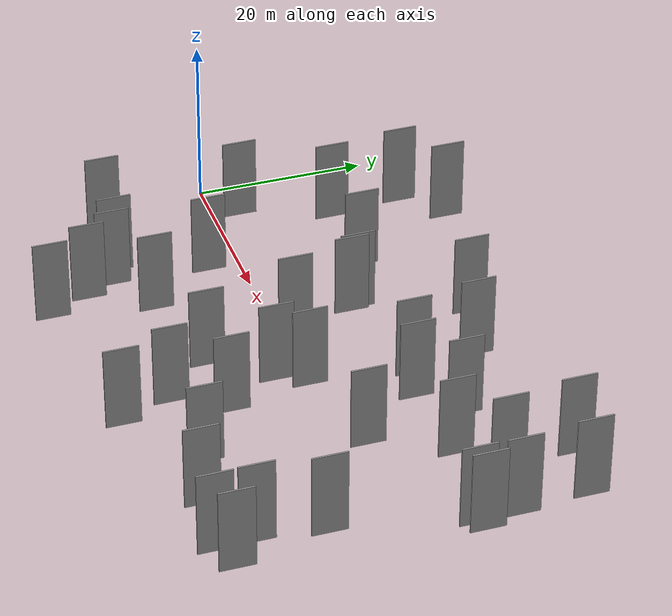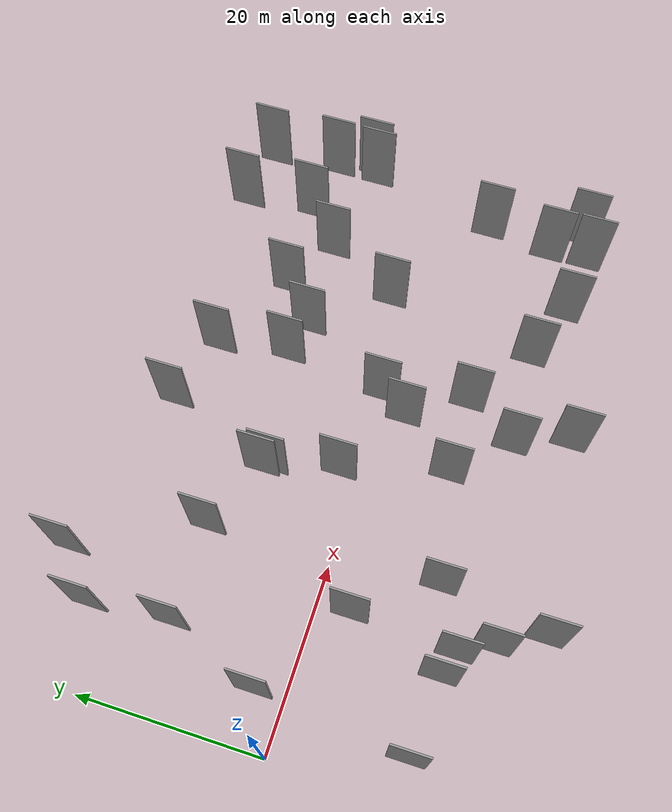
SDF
<sdf version="1.6">
 <world name="default">
  <scene>
   <sky><clouds><speed>12</speed></clouds></sky>
   <ambient>0.4 0.4 0.4 1</ambient>
   <background>0.7 0.7 0.7 1</background>
   <shadows>1</shadows>
  </scene>
  <gravity>0 0 -9.8066</gravity>
  <magnetic_field>6e-06 2.3e-05 -4.2e-05</magnetic_field>
  <physics default="0" name="default_physics" type="ode">
   <ode>
    <solver>
     <type>quick</type>
     <iters>10</iters>
     <sor>1.0</sor>
     <use_dynamic_moi_rescaling>0</use_dynamic_moi_rescaling>
    </solver>
    <constraints>
     <cfm>0</cfm>
     <erp>0.2</erp>
     <contact_max_correcting_vel>100</contact_max_correcting_vel>
     <contact_surface_layer>0.001</contact_surface_layer>
    </constraints>
   </ode>
   <max_step_size>0.004</max_step_size>
   <real_time_factor>1</real_time_factor>
   <real_time_update_rate>250</real_time_update_rate>
  </physics>
  <light name="sun" type="directional">
   <pose>0 0 10 0 0 0</pose>
   <diffuse>0.8 0.8 0.8 1</diffuse>
   <specular>0.2 0.2 0.2 1</specular>
   <attenuation>
    <range>1000</range>
    <constant>0.9</constant>
    <linear>0.01</linear>
    <quadratic>0.001</quadratic>
   </attenuation>
   <direction>-0.5 0.1 -0.9</direction>
  </light>
  <model name="grey_wall_1">
   <static>1</static>
   <pose>40.7307 19.8283 0.0 0.000000 0.000000 1.570796</pose>
   <link name="link">
    <pose>0 0 5.00 0 0 0</pose>
    <collision name="collision"><geometry><box><size>4.00 0.2 10.00</size></box></geometry></collision>
    <visual name="visual">
     <cast_shadows>0</cast_shadows>
     <geometry><box><size>4.00 0.2 10.00</size></box></geometry>
     <material>
      <script>
       <uri>model://grey_wall/materials/scripts</uri>
       <uri>model://grey_wall/materials/textures</uri>
       <name>vrc/grey_wall</name>
      </script>
     </material>
    </visual>
   </link>
  </model>
  <model name="grey_wall_2">
   <static>1</static>
   <pose>33.2767 -9.0549 0.0 0.000000 0.000000 1.570796</pose>
   <link name="link">
    <pose>0 0 5.00 0 0 0</pose>
    <collision name="collision"><geometry><box><size>4.00 0.2 10.00</size></box></geometry></collision>
    <visual name="visual">
     <cast_shadows>0</cast_shadows>
     <geometry><box><size>4.00 0.2 10.00</size></box></geometry>
     <material>
      <script>
       <uri>model://grey_wall/materials/scripts</uri>
       <uri>model://grey_wall/materials/textures</uri>
       <name>vrc/grey_wall</name>
      </script>
     </material>
    </visual>
   </link>
  </model>
  <model name="grey_wall_3">
   <static>1</static>
   <pose>8.7063 22.1134 0.0 0.000000 0.000000 1.570796</pose>
   <link name="link">
    <pose>0 0 5.00 0 0 0</pose>
    <collision name="collision"><geometry><box><size>4.00 0.2 10.00</size></box></geometry></collision>
    <visual name="visual">
     <cast_shadows>0</cast_shadows>
     <geometry><box><size>4.00 0.2 10.00</size></box></geometry>
     <material>
      <script>
       <uri>model://grey_wall/materials/scripts</uri>
       <uri>model://grey_wall/materials/textures</uri>
       <name>vrc/grey_wall</name>
      </script>
     </material>
    </visual>
   </link>
  </model>
  <model name="grey_wall_4">
   <static>1</static>
   <pose>32.7953 22.0406 0.0 0.000000 0.000000 1.570796</pose>
   <link name="link">
    <pose>0 0 5.00 0 0 0</pose>
    <collision name="collision"><geometry><box><size>4.00 0.2 10.00</size></box></geometry></collision>
    <visual name="visual">
     <cast_shadows>0</cast_shadows>
     <geometry><box><size>4.00 0.2 10.00</size></box></geometry>
     <material>
      <script>
       <uri>model://grey_wall/materials/scripts</uri>
       <uri>model://grey_wall/materials/textures</uri>
       <name>vrc/grey_wall</name>
      </script>
     </material>
    </visual>
   </link>
  </model>
  <model name="grey_wall_5">
   <static>1</static>
   <pose>38.3207 -2.6316 0.0 0.000000 0.000000 1.570796</pose>
   <link name="link">
    <pose>0 0 5.00 0 0 0</pose>
    <collision name="collision"><geometry><box><size>4.00 0.2 10.00</size></box></geometry></collision>
    <visual name="visual">
     <cast_shadows>0</cast_shadows>
     <geometry><box><size>4.00 0.2 10.00</size></box></geometry>
     <material>
      <script>
       <uri>model://grey_wall/materials/scripts</uri>
       <uri>model://grey_wall/materials/textures</uri>
       <name>vrc/grey_wall</name>
      </script>
     </material>
    </visual>
   </link>
  </model>
  <model name="grey_wall_6">
   <static>1</static>
   <pose>3.9471 -13.0017 0.0 0.000000 0.000000 1.570796</pose>
   <link name="link">
    <pose>0 0 5.00 0 0 0</pose>
    <collision name="collision"><geometry><box><size>4.00 0.2 10.00</size></box></geometry></collision>
    <visual name="visual">
     <cast_shadows>0</cast_shadows>
     <geometry><box><size>4.00 0.2 10.00</size></box></geometry>
     <material>
      <script>
       <uri>model://grey_wall/materials/scripts</uri>
       <uri>model://grey_wall/materials/textures</uri>
       <name>vrc/grey_wall</name>
      </script>
     </material>
    </visual>
   </link>
  </model>
  <model name="grey_wall_7">
   <static>1</static>
   <pose>56.5104 -16.4994 0.0 0.000000 0.000000 1.570796</pose>
   <link name="link">
    <pose>0 0 5.00 0 0 0</pose>
    <collision name="collision"><geometry><box><size>4.00 0.2 10.00</size></box></geometry></collision>
    <visual name="visual">
     <cast_shadows>0</cast_shadows>
     <geometry><box><size>4.00 0.2 10.00</size></box></geometry>
     <material>
      <script>
       <uri>model://grey_wall/materials/scripts</uri>
       <uri>model://grey_wall/materials/textures</uri>
       <name>vrc/grey_wall</name>
      </script>
     </material>
    </visual>
   </link>
  </model>
  <model name="grey_wall_8">
   <static>1</static>
   <pose>46.0687 10.8456 0.0 0.000000 0.000000 1.570796</pose>
   <link name="link">
    <pose>0 0 5.00 0 0 0</pose>
    <collision name="collision"><geometry><box><size>4.00 0.2 10.00</size></box></geometry></collision>
    <visual name="visual">
     <cast_shadows>0</cast_shadows>
     <geometry><box><size>4.00 0.2 10.00</size></box></geometry>
     <material>
      <script>
       <uri>model://grey_wall/materials/scripts</uri>
       <uri>model://grey_wall/materials/textures</uri>
       <name>vrc/grey_wall</name>
      </script>
     </material>
    </visual>
   </link>
  </model>
  <model name="grey_wall_9">
   <static>1</static>
   <pose>9.5039 13.4034 0.0 0.000000 0.000000 1.570796</pose>
   <link name="link">
    <pose>0 0 5.00 0 0 0</pose>
    <collision name="collision"><geometry><box><size>4.00 0.2 10.00</size></box></geometry></collision>
    <visual name="visual">
     <cast_shadows>0</cast_shadows>
     <geometry><box><size>4.00 0.2 10.00</size></box></geometry>
     <material>
      <script>
       <uri>model://grey_wall/materials/scripts</uri>
       <uri>model://grey_wall/materials/textures</uri>
       <name>vrc/grey_wall</name>
      </script>
     </material>
    </visual>
   </link>
  </model>
  <model name="grey_wall_10">
   <static>1</static>
   <pose>68.3991 14.4143 0.0 0.000000 0.000000 1.570796</pose>
   <link name="link">
    <pose>0 0 5.00 0 0 0</pose>
    <collision name="collision"><geometry><box><size>4.00 0.2 10.00</size></box></geometry></collision>
    <visual name="visual">
     <cast_shadows>0</cast_shadows>
     <geometry><box><size>4.00 0.2 10.00</size></box></geometry>
     <material>
      <script>
       <uri>model://grey_wall/materials/scripts</uri>
       <uri>model://grey_wall/materials/textures</uri>
       <name>vrc/grey_wall</name>
      </script>
     </material>
    </visual>
   </link>
  </model>
  <model name="grey_wall_11">
   <static>1</static>
   <pose>16.8384 -18.1993 0.0 0.000000 0.000000 1.570796</pose>
   <link name="link">
    <pose>0 0 5.00 0 0 0</pose>
    <collision name="collision"><geometry><box><size>4.00 0.2 10.00</size></box></geometry></collision>
    <visual name="visual">
     <cast_shadows>0</cast_shadows>
     <geometry><box><size>4.00 0.2 10.00</size></box></geometry>
     <material>
      <script>
       <uri>model://grey_wall/materials/scripts</uri>
       <uri>model://grey_wall/materials/textures</uri>
       <name>vrc/grey_wall</name>
      </script>
     </material>
    </visual>
   </link>
  </model>
  <model name="grey_wall_12">
   <static>1</static>
   <pose>64.0251 -12.9024 0.0 0.000000 0.000000 1.570796</pose>
   <link name="link">
    <pose>0 0 5.00 0 0 0</pose>
    <collision name="collision"><geometry><box><size>4.00 0.2 10.00</size></box></geometry></collision>
    <visual name="visual">
     <cast_shadows>0</cast_shadows>
     <geometry><box><size>4.00 0.2 10.00</size></box></geometry>
     <material>
      <script>
       <uri>model://grey_wall/materials/scripts</uri>
       <uri>model://grey_wall/materials/textures</uri>
       <name>vrc/grey_wall</name>
      </script>
     </material>
    </visual>
   </link>
  </model>
  <model name="grey_wall_13">
   <static>1</static>
   <pose>15.6919 -3.6150 0.0 0.000000 0.000000 1.570796</pose>
   <link name="link">
    <pose>0 0 5.00 0 0 0</pose>
    <collision name="collision"><geometry><box><size>4.00 0.2 10.00</size></box></geometry></collision>
    <visual name="visual">
     <cast_shadows>0</cast_shadows>
     <geometry><box><size>4.00 0.2 10.00</size></box></geometry>
     <material>
      <script>
       <uri>model://grey_wall/materials/scripts</uri>
       <uri>model://grey_wall/materials/textures</uri>
       <name>vrc/grey_wall</name>
      </script>
     </material>
    </visual>
   </link>
  </model>
  <model name="grey_wall_14">
   <static>1</static>
   <pose>64.1314 -17.3532 0.0 0.000000 0.000000 1.570796</pose>
   <link name="link">
    <pose>0 0 5.00 0 0 0</pose>
    <collision name="collision"><geometry><box><size>4.00 0.2 10.00</size></box></geometry></collision>
    <visual name="visual">
     <cast_shadows>0</cast_shadows>
     <geometry><box><size>4.00 0.2 10.00</size></box></geometry>
     <material>
      <script>
       <uri>model://grey_wall/materials/scripts</uri>
       <uri>model://grey_wall/materials/textures</uri>
       <name>vrc/grey_wall</name>
      </script>
     </material>
    </visual>
   </link>
  </model>
  <model name="grey_wall_15">
   <static>1</static>
   <pose>50.5043 14.7641 0.0 0.000000 0.000000 1.570796</pose>
   <link name="link">
    <pose>0 0 5.00 0 0 0</pose>
    <collision name="collision"><geometry><box><size>4.00 0.2 10.00</size></box></geometry></collision>
    <visual name="visual">
     <cast_shadows>0</cast_shadows>
     <geometry><box><size>4.00 0.2 10.00</size></box></geometry>
     <material>
      <script>
       <uri>model://grey_wall/materials/scripts</uri>
       <uri>model://grey_wall/materials/textures</uri>
       <name>vrc/grey_wall</name>
      </script>
     </material>
    </visual>
   </link>
  </model>
  <model name="grey_wall_16">
   <static>1</static>
   <pose>21.2338 -11.4759 0.0 0.000000 0.000000 1.570796</pose>
   <link name="link">
    <pose>0 0 5.00 0 0 0</pose>
    <collision name="collision"><geometry><box><size>4.00 0.2 10.00</size></box></geometry></collision>
    <visual name="visual">
     <cast_shadows>0</cast_shadows>
     <geometry><box><size>4.00 0.2 10.00</size></box></geometry>
     <material>
      <script>
       <uri>model://grey_wall/materials/scripts</uri>
       <uri>model://grey_wall/materials/textures</uri>
       <name>vrc/grey_wall</name>
      </script>
     </material>
    </visual>
   </link>
  </model>
  <model name="grey_wall_17">
   <static>1</static>
   <pose>67.4018 -16.0498 0.0 0.000000 0.000000 1.570796</pose>
   <link name="link">
    <pose>0 0 5.00 0 0 0</pose>
    <collision name="collision"><geometry><box><size>4.00 0.2 10.00</size></box></geometry></collision>
    <visual name="visual">
     <cast_shadows>0</cast_shadows>
     <geometry><box><size>4.00 0.2 10.00</size></box></geometry>
     <material>
      <script>
       <uri>model://grey_wall/materials/scripts</uri>
       <uri>model://grey_wall/materials/textures</uri>
       <name>vrc/grey_wall</name>
      </script>
     </material>
    </visual>
   </link>
  </model>
  <model name="grey_wall_18">
   <static>1</static>
   <pose>28.4994 9.3930 0.0 0.000000 0.000000 1.570796</pose>
   <link name="link">
    <pose>0 0 5.00 0 0 0</pose>
    <collision name="collision"><geometry><box><size>4.00 0.2 10.00</size></box></geometry></collision>
    <visual name="visual">
     <cast_shadows>0</cast_shadows>
     <geometry><box><size>4.00 0.2 10.00</size></box></geometry>
     <material>
      <script>
       <uri>model://grey_wall/materials/scripts</uri>
       <uri>model://grey_wall/materials/textures</uri>
       <name>vrc/grey_wall</name>
      </script>
     </material>
    </visual>
   </link>
  </model>
  <model name="grey_wall_19">
   <static>1</static>
   <pose>28.0686 10.2553 0.0 0.000000 0.000000 1.570796</pose>
   <link name="link">
    <pose>0 0 5.00 0 0 0</pose>
    <collision name="collision"><geometry><box><size>4.00 0.2 10.00</size></box></geometry></collision>
    <visual name="visual">
     <cast_shadows>0</cast_shadows>
     <geometry><box><size>4.00 0.2 10.00</size></box></geometry>
     <material>
      <script>
       <uri>model://grey_wall/materials/scripts</uri>
       <uri>model://grey_wall/materials/textures</uri>
       <name>vrc/grey_wall</name>
      </script>
     </material>
    </visual>
   </link>
  </model>
  <model name="grey_wall_20">
   <static>1</static>
   <pose>68.3465 9.4597 0.0 0.000000 0.000000 1.570796</pose>
   <link name="link">
    <pose>0 0 5.00 0 0 0</pose>
    <collision name="collision"><geometry><box><size>4.00 0.2 10.00</size></box></geometry></collision>
    <visual name="visual">
     <cast_shadows>0</cast_shadows>
     <geometry><box><size>4.00 0.2 10.00</size></box></geometry>
     <material>
      <script>
       <uri>model://grey_wall/materials/scripts</uri>
       <uri>model://grey_wall/materials/textures</uri>
       <name>vrc/grey_wall</name>
      </script>
     </material>
    </visual>
   </link>
  </model>
  <model name="grey_wall_21">
   <static>1</static>
   <pose>49.7280 -14.1399 0.0 0.000000 0.000000 1.570796</pose>
   <link name="link">
    <pose>0 0 5.00 0 0 0</pose>
    <collision name="collision"><geometry><box><size>4.00 0.2 10.00</size></box></geometry></collision>
    <visual name="visual">
     <cast_shadows>0</cast_shadows>
     <geometry><box><size>4.00 0.2 10.00</size></box></geometry>
     <material>
      <script>
       <uri>model://grey_wall/materials/scripts</uri>
       <uri>model://grey_wall/materials/textures</uri>
       <name>vrc/grey_wall</name>
      </script>
     </material>
    </visual>
   </link>
  </model>
  <model name="grey_wall_22">
   <static>1</static>
   <pose>61.4593 15.4878 0.0 0.000000 0.000000 1.570796</pose>
   <link name="link">
    <pose>0 0 5.00 0 0 0</pose>
    <collision name="collision"><geometry><box><size>4.00 0.2 10.00</size></box></geometry></collision>
    <visual name="visual">
     <cast_shadows>0</cast_shadows>
     <geometry><box><size>4.00 0.2 10.00</size></box></geometry>
     <material>
      <script>
       <uri>model://grey_wall/materials/scripts</uri>
       <uri>model://grey_wall/materials/textures</uri>
       <name>vrc/grey_wall</name>
      </script>
     </material>
    </visual>
   </link>
  </model>
  <model name="grey_wall_23">
   <static>1</static>
   <pose>12.3854 -13.8442 0.0 0.000000 0.000000 1.570796</pose>
   <link name="link">
    <pose>0 0 5.00 0 0 0</pose>
    <collision name="collision"><geometry><box><size>4.00 0.2 10.00</size></box></geometry></collision>
    <visual name="visual">
     <cast_shadows>0</cast_shadows>
     <geometry><box><size>4.00 0.2 10.00</size></box></geometry>
     <material>
      <script>
       <uri>model://grey_wall/materials/scripts</uri>
       <uri>model://grey_wall/materials/textures</uri>
       <name>vrc/grey_wall</name>
      </script>
     </material>
    </visual>
   </link>
  </model>
  <model name="grey_wall_24">
   <static>1</static>
   <pose>40.3243 0.5513 0.0 0.000000 0.000000 1.570796</pose>
   <link name="link">
    <pose>0 0 5.00 0 0 0</pose>
    <collision name="collision"><geometry><box><size>4.00 0.2 10.00</size></box></geometry></collision>
    <visual name="visual">
     <cast_shadows>0</cast_shadows>
     <geometry><box><size>4.00 0.2 10.00</size></box></geometry>
     <material>
      <script>
       <uri>model://grey_wall/materials/scripts</uri>
       <uri>model://grey_wall/materials/textures</uri>
       <name>vrc/grey_wall</name>
      </script>
     </material>
    </visual>
   </link>
  </model>
  <model name="grey_wall_25">
   <static>1</static>
   <pose>19.2775 -23.0339 0.0 0.000000 0.000000 1.570796</pose>
   <link name="link">
    <pose>0 0 5.00 0 0 0</pose>
    <collision name="collision"><geometry><box><size>4.00 0.2 10.00</size></box></geometry></collision>
    <visual name="visual">
     <cast_shadows>0</cast_shadows>
     <geometry><box><size>4.00 0.2 10.00</size></box></geometry>
     <material>
      <script>
       <uri>model://grey_wall/materials/scripts</uri>
       <uri>model://grey_wall/materials/textures</uri>
       <name>vrc/grey_wall</name>
      </script>
     </material>
    </visual>
   </link>
  </model>
  <model name="grey_wall_26">
   <static>1</static>
   <pose>56.8309 11.3789 0.0 0.000000 0.000000 1.570796</pose>
   <link name="link">
    <pose>0 0 5.00 0 0 0</pose>
    <collision name="collision"><geometry><box><size>4.00 0.2 10.00</size></box></geometry></collision>
    <visual name="visual">
     <cast_shadows>0</cast_shadows>
     <geometry><box><size>4.00 0.2 10.00</size></box></geometry>
     <material>
      <script>
       <uri>model://grey_wall/materials/scripts</uri>
       <uri>model://grey_wall/materials/textures</uri>
       <name>vrc/grey_wall</name>
      </script>
     </material>
    </visual>
   </link>
  </model>
  <model name="grey_wall_27">
   <static>1</static>
   <pose>65.0187 -5.4609 0.0 0.000000 0.000000 1.570796</pose>
   <link name="link">
    <pose>0 0 5.00 0 0 0</pose>
    <collision name="collision"><geometry><box><size>4.00 0.2 10.00</size></box></geometry></collision>
    <visual name="visual">
     <cast_shadows>0</cast_shadows>
     <geometry><box><size>4.00 0.2 10.00</size></box></geometry>
     <material>
      <script>
       <uri>model://grey_wall/materials/scripts</uri>
       <uri>model://grey_wall/materials/textures</uri>
       <name>vrc/grey_wall</name>
      </script>
     </material>
    </visual>
   </link>
  </model>
  <model name="grey_wall_28">
   <static>1</static>
   <pose>20.0967 13.4360 0.0 0.000000 0.000000 1.570796</pose>
   <link name="link">
    <pose>0 0 5.00 0 0 0</pose>
    <collision name="collision"><geometry><box><size>4.00 0.2 10.00</size></box></geometry></collision>
    <visual name="visual">
     <cast_shadows>0</cast_shadows>
     <geometry><box><size>4.00 0.2 10.00</size></box></geometry>
     <material>
      <script>
       <uri>model://grey_wall/materials/scripts</uri>
       <uri>model://grey_wall/materials/textures</uri>
       <name>vrc/grey_wall</name>
      </script>
     </material>
    </visual>
   </link>
  </model>
  <model name="grey_wall_29">
   <static>1</static>
   <pose>30.1761 2.1967 0.0 0.000000 0.000000 1.570796</pose>
   <link name="link">
    <pose>0 0 5.00 0 0 0</pose>
    <collision name="collision"><geometry><box><size>4.00 0.2 10.00</size></box></geometry></collision>
    <visual name="visual">
     <cast_shadows>0</cast_shadows>
     <geometry><box><size>4.00 0.2 10.00</size></box></geometry>
     <material>
      <script>
       <uri>model://grey_wall/materials/scripts</uri>
       <uri>model://grey_wall/materials/textures</uri>
       <name>vrc/grey_wall</name>
      </script>
     </material>
    </visual>
   </link>
  </model>
  <model name="grey_wall_30">
   <static>1</static>
   <pose>13.6365 26.2984 0.0 0.000000 0.000000 1.570796</pose>
   <link name="link">
    <pose>0 0 5.00 0 0 0</pose>
    <collision name="collision"><geometry><box><size>4.00 0.2 10.00</size></box></geometry></collision>
    <visual name="visual">
     <cast_shadows>0</cast_shadows>
     <geometry><box><size>4.00 0.2 10.00</size></box></geometry>
     <material>
      <script>
       <uri>model://grey_wall/materials/scripts</uri>
       <uri>model://grey_wall/materials/textures</uri>
       <name>vrc/grey_wall</name>
      </script>
     </material>
    </visual>
   </link>
  </model>
  <model name="grey_wall_31">
   <static>1</static>
   <pose>40.8926 -20.7122 0.0 0.000000 0.000000 1.570796</pose>
   <link name="link">
    <pose>0 0 5.00 0 0 0</pose>
    <collision name="collision"><geometry><box><size>4.00 0.2 10.00</size></box></geometry></collision>
    <visual name="visual">
     <cast_shadows>0</cast_shadows>
     <geometry><box><size>4.00 0.2 10.00</size></box></geometry>
     <material>
      <script>
       <uri>model://grey_wall/materials/scripts</uri>
       <uri>model://grey_wall/materials/textures</uri>
       <name>vrc/grey_wall</name>
      </script>
     </material>
    </visual>
   </link>
  </model>
  <model name="grey_wall_32">
   <static>1</static>
   <pose>38.5771 -14.7041 0.0 0.000000 0.000000 1.570796</pose>
   <link name="link">
    <pose>0 0 5.00 0 0 0</pose>
    <collision name="collision"><geometry><box><size>4.00 0.2 10.00</size></box></geometry></collision>
    <visual name="visual">
     <cast_shadows>0</cast_shadows>
     <geometry><box><size>4.00 0.2 10.00</size></box></geometry>
     <material>
      <script>
       <uri>model://grey_wall/materials/scripts</uri>
       <uri>model://grey_wall/materials/textures</uri>
       <name>vrc/grey_wall</name>
      </script>
     </material>
    </visual>
   </link>
  </model>
  <model name="grey_wall_33">
   <static>1</static>
   <pose>60.6215 23.5138 0.0 0.000000 0.000000 1.570796</pose>
   <link name="link">
    <pose>0 0 5.00 0 0 0</pose>
    <collision name="collision"><geometry><box><size>4.00 0.2 10.00</size></box></geometry></collision>
    <visual name="visual">
     <cast_shadows>0</cast_shadows>
     <geometry><box><size>4.00 0.2 10.00</size></box></geometry>
     <material>
      <script>
       <uri>model://grey_wall/materials/scripts</uri>
       <uri>model://grey_wall/materials/textures</uri>
       <name>vrc/grey_wall</name>
      </script>
     </material>
    </visual>
   </link>
  </model>
  <model name="grey_wall_34">
   <static>1</static>
   <pose>42.1976 -8.9047 0.0 0.000000 0.000000 1.570796</pose>
   <link name="link">
    <pose>0 0 5.00 0 0 0</pose>
    <collision name="collision"><geometry><box><size>4.00 0.2 10.00</size></box></geometry></collision>
    <visual name="visual">
     <cast_shadows>0</cast_shadows>
     <geometry><box><size>4.00 0.2 10.00</size></box></geometry>
     <material>
      <script>
       <uri>model://grey_wall/materials/scripts</uri>
       <uri>model://grey_wall/materials/textures</uri>
       <name>vrc/grey_wall</name>
      </script>
     </material>
    </visual>
   </link>
  </model>
  <model name="grey_wall_35">
   <static>1</static>
   <pose>69.6100 10.1425 0.0 0.000000 0.000000 1.570796</pose>
   <link name="link">
    <pose>0 0 5.00 0 0 0</pose>
    <collision name="collision"><geometry><box><size>4.00 0.2 10.00</size></box></geometry></collision>
    <visual name="visual">
     <cast_shadows>0</cast_shadows>
     <geometry><box><size>4.00 0.2 10.00</size></box></geometry>
     <material>
      <script>
       <uri>model://grey_wall/materials/scripts</uri>
       <uri>model://grey_wall/materials/textures</uri>
       <name>vrc/grey_wall</name>
      </script>
     </material>
    </visual>
   </link>
  </model>
  <model name="grey_wall_36">
   <static>1</static>
   <pose>14.9835 -14.7927 0.0 0.000000 0.000000 1.570796</pose>
   <link name="link">
    <pose>0 0 5.00 0 0 0</pose>
    <collision name="collision"><geometry><box><size>4.00 0.2 10.00</size></box></geometry></collision>
    <visual name="visual">
     <cast_shadows>0</cast_shadows>
     <geometry><box><size>4.00 0.2 10.00</size></box></geometry>
     <material>
      <script>
       <uri>model://grey_wall/materials/scripts</uri>
       <uri>model://grey_wall/materials/textures</uri>
       <name>vrc/grey_wall</name>
      </script>
     </material>
    </visual>
   </link>
  </model>
  <model name="grey_wall_37">
   <static>1</static>
   <pose>52.3386 3.1055 0.0 0.000000 0.000000 1.570796</pose>
   <link name="link">
    <pose>0 0 5.00 0 0 0</pose>
    <collision name="collision"><geometry><box><size>4.00 0.2 10.00</size></box></geometry></collision>
    <visual name="visual">
     <cast_shadows>0</cast_shadows>
     <geometry><box><size>4.00 0.2 10.00</size></box></geometry>
     <material>
      <script>
       <uri>model://grey_wall/materials/scripts</uri>
       <uri>model://grey_wall/materials/textures</uri>
       <name>vrc/grey_wall</name>
      </script>
     </material>
    </visual>
   </link>
  </model>
  <model name="grey_wall_38">
   <static>1</static>
   <pose>5.6550 3.2007 0.0 0.000000 0.000000 1.570796</pose>
   <link name="link">
    <pose>0 0 5.00 0 0 0</pose>
    <collision name="collision"><geometry><box><size>4.00 0.2 10.00</size></box></geometry></collision>
    <visual name="visual">
     <cast_shadows>0</cast_shadows>
     <geometry><box><size>4.00 0.2 10.00</size></box></geometry>
     <material>
      <script>
       <uri>model://grey_wall/materials/scripts</uri>
       <uri>model://grey_wall/materials/textures</uri>
       <name>vrc/grey_wall</name>
      </script>
     </material>
    </visual>
   </link>
  </model>
  <model name="grey_wall_39">
   <static>1</static>
   <pose>67.7492 22.3789 0.0 0.000000 0.000000 1.570796</pose>
   <link name="link">
    <pose>0 0 5.00 0 0 0</pose>
    <collision name="collision"><geometry><box><size>4.00 0.2 10.00</size></box></geometry></collision>
    <visual name="visual">
     <cast_shadows>0</cast_shadows>
     <geometry><box><size>4.00 0.2 10.00</size></box></geometry>
     <material>
      <script>
       <uri>model://grey_wall/materials/scripts</uri>
       <uri>model://grey_wall/materials/textures</uri>
       <name>vrc/grey_wall</name>
      </script>
     </material>
    </visual>
   </link>
  </model>
  <model name="grey_wall_40">
   <static>1</static>
   <pose>41.8715 11.9471 0.0 0.000000 0.000000 1.570796</pose>
   <link name="link">
    <pose>0 0 5.00 0 0 0</pose>
    <collision name="collision"><geometry><box><size>4.00 0.2 10.00</size></box></geometry></collision>
    <visual name="visual">
     <cast_shadows>0</cast_shadows>
     <geometry><box><size>4.00 0.2 10.00</size></box></geometry>
     <material>
      <script>
       <uri>model://grey_wall/materials/scripts</uri>
       <uri>model://grey_wall/materials/textures</uri>
       <name>vrc/grey_wall</name>
      </script>
     </material>
    </visual>
   </link>
  </model>
 </world>
</sdf>
